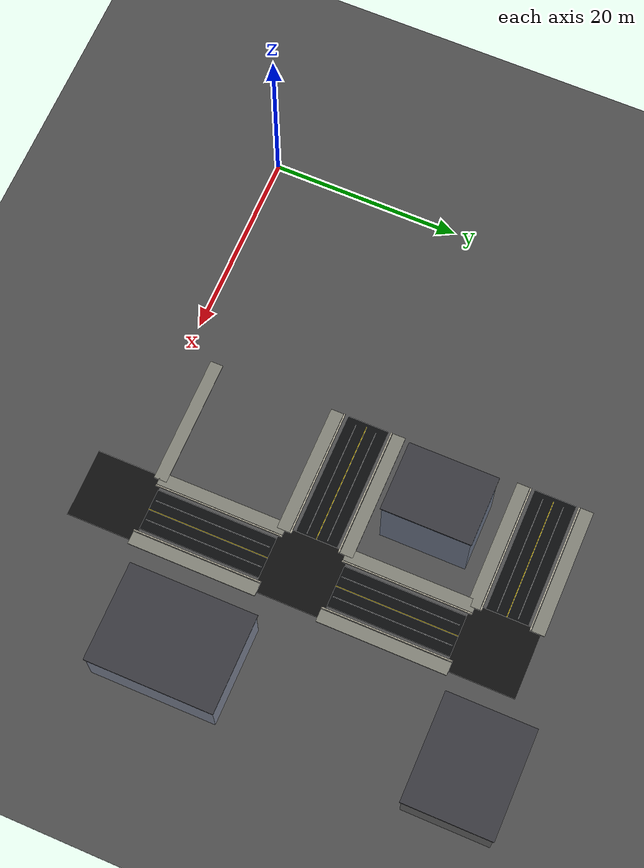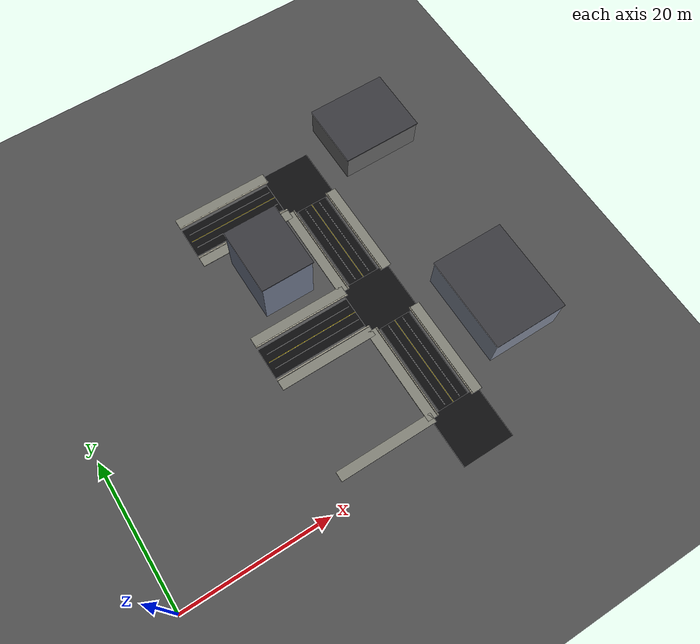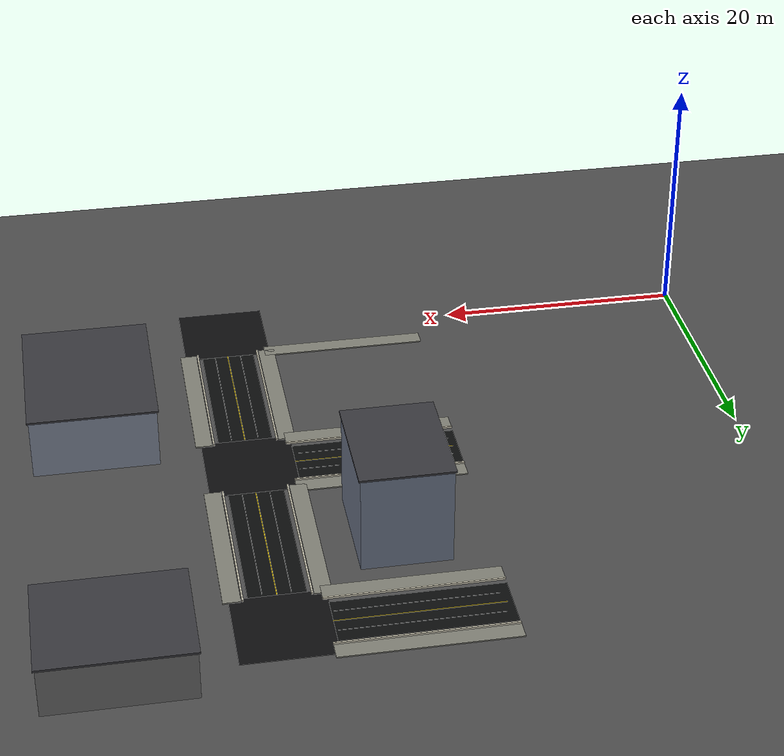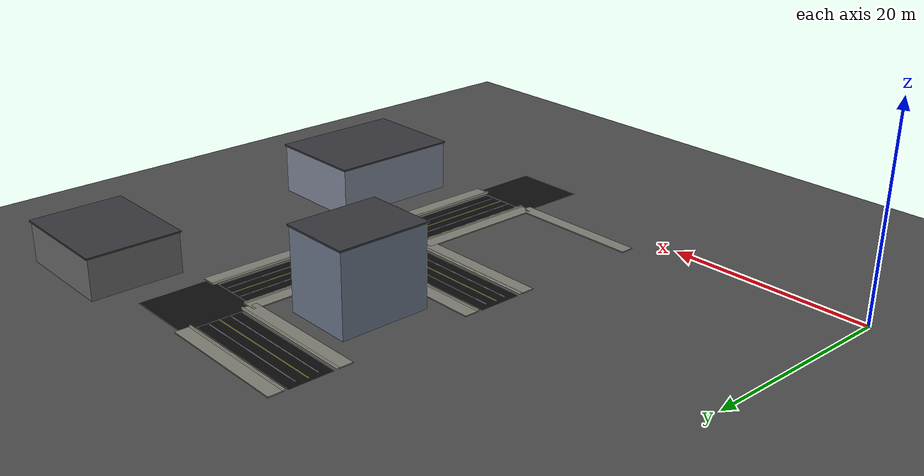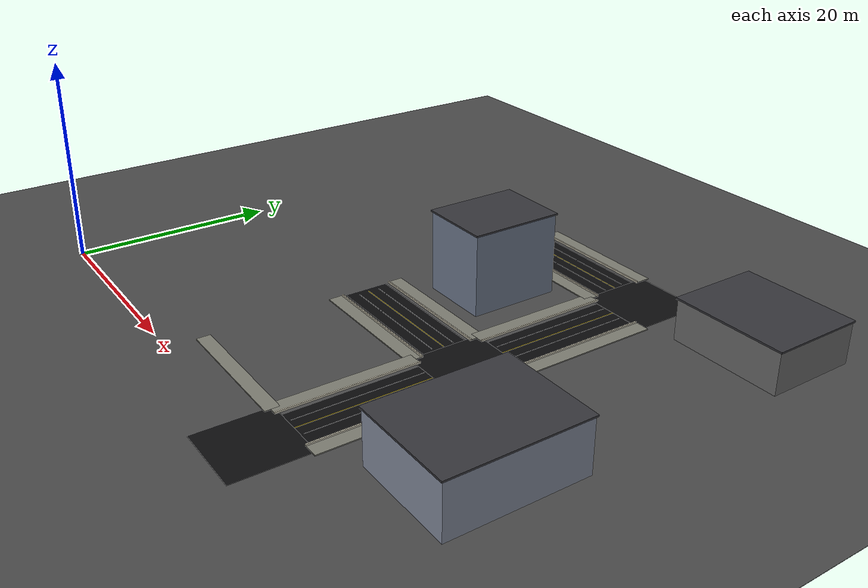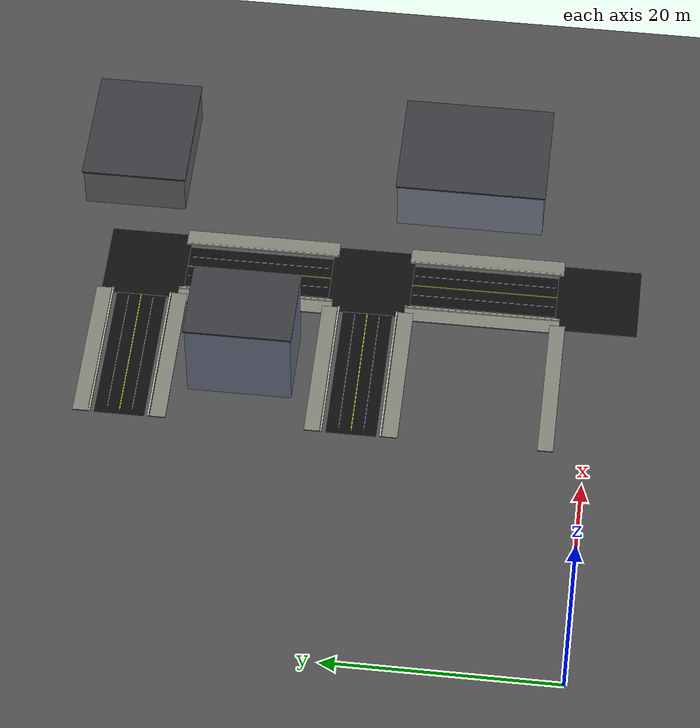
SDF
<sdf version="1.9">
 <world name="smart_city_world">
  <model name="ground">
   <static>true</static>
   <link name="link">
    <collision name="collision"><geometry><box><size>145 145 0.05</size></box></geometry></collision>
    <visual name="visual">
     <geometry><box><size>145 145 0.05</size></box></geometry>
     <material><ambient>0.30 0.30 0.30 1</ambient><diffuse>0.30 0.30 0.30 1</diffuse></material>
    </visual>
   </link>
  </model>
  <model name="road_e4">
   <static>true</static>
   <pose>30.000 40.000 0.018 0 0 0.000000</pose>
   <link name="link">
    <collision name="collision"><geometry><box><size>13.600 4.350 0.030</size></box></geometry></collision>
    <visual name="visual">
     <geometry><box><size>13.600 4.350 0.030</size></box></geometry>
     <material><ambient>0.045 0.047 0.05 1</ambient><diffuse>0.045 0.047 0.05 1</diffuse></material>
    </visual>
   </link>
  </model>
  <model name="center_line_e4">
   <static>true</static>
   <pose>30.000 40.000 0.052 0 0 0.000000</pose>
   <link name="link">
    <visual name="visual">
     <geometry><box><size>12.800 0.070 0.010</size></box></geometry>
     <material><ambient>1 0.86 0.05 1</ambient><diffuse>1 0.86 0.05 1</diffuse></material>
    </visual>
   </link>
  </model>
  <model name="sidewalk_e4_L">
   <static>true</static>
   <pose>30.000 43.350 0.075 0 0 0.000000</pose>
   <link name="link">
    <visual name="visual">
     <geometry><box><size>13.600 1.350 0.100</size></box></geometry>
     <material><ambient>0.5 0.5 0.46 1</ambient><diffuse>0.5 0.5 0.46 1</diffuse></material>
    </visual>
   </link>
  </model>
  <model name="curb_e4_L">
   <static>true</static>
   <pose>30.000 42.550 0.130 0 0 0.000000</pose>
   <link name="link">
    <visual name="visual">
     <geometry><box><size>13.600 0.120 0.180</size></box></geometry>
     <material><ambient>0.8 0.78 0.7 1</ambient><diffuse>0.8 0.78 0.7 1</diffuse></material>
    </visual>
   </link>
  </model>
  <model name="edge_line_e4_L">
   <static>true</static>
   <pose>30.000 41.080 0.054 0 0 0.000000</pose>
   <link name="link">
    <visual name="visual">
     <geometry><box><size>12.400 0.035 0.010</size></box></geometry>
     <material><ambient>0.85 0.85 0.85 1</ambient><diffuse>0.85 0.85 0.85 1</diffuse></material>
    </visual>
   </link>
  </model>
  <model name="sidewalk_e4_R">
   <static>true</static>
   <pose>30.000 36.650 0.075 0 0 0.000000</pose>
   <link name="link">
    <visual name="visual">
     <geometry><box><size>13.600 1.350 0.100</size></box></geometry>
     <material><ambient>0.5 0.5 0.46 1</ambient><diffuse>0.5 0.5 0.46 1</diffuse></material>
    </visual>
   </link>
  </model>
  <model name="curb_e4_R">
   <static>true</static>
   <pose>30.000 37.450 0.130 0 0 0.000000</pose>
   <link name="link">
    <visual name="visual">
     <geometry><box><size>13.600 0.120 0.180</size></box></geometry>
     <material><ambient>0.8 0.78 0.7 1</ambient><diffuse>0.8 0.78 0.7 1</diffuse></material>
    </visual>
   </link>
  </model>
  <model name="edge_line_e4_R">
   <static>true</static>
   <pose>30.000 38.920 0.054 0 0 0.000000</pose>
   <link name="link">
    <visual name="visual">
     <geometry><box><size>12.400 0.035 0.010</size></box></geometry>
     <material><ambient>0.85 0.85 0.85 1</ambient><diffuse>0.85 0.85 0.85 1</diffuse></material>
    </visual>
   </link>
  </model>
  <model name="road_e8">
   <static>true</static>
   <pose>30.000 20.000 0.018 0 0 0.000000</pose>
   <link name="link">
    <collision name="collision"><geometry><box><size>13.600 4.350 0.030</size></box></geometry></collision>
    <visual name="visual">
     <geometry><box><size>13.600 4.350 0.030</size></box></geometry>
     <material><ambient>0.045 0.047 0.05 1</ambient><diffuse>0.045 0.047 0.05 1</diffuse></material>
    </visual>
   </link>
  </model>
  <model name="center_line_e8">
   <static>true</static>
   <pose>30.000 20.000 0.052 0 0 0.000000</pose>
   <link name="link">
    <visual name="visual">
     <geometry><box><size>12.800 0.070 0.010</size></box></geometry>
     <material><ambient>1 0.86 0.05 1</ambient><diffuse>1 0.86 0.05 1</diffuse></material>
    </visual>
   </link>
  </model>
  <model name="sidewalk_e8_L">
   <static>true</static>
   <pose>30.000 23.350 0.075 0 0 0.000000</pose>
   <link name="link">
    <visual name="visual">
     <geometry><box><size>13.600 1.350 0.100</size></box></geometry>
     <material><ambient>0.5 0.5 0.46 1</ambient><diffuse>0.5 0.5 0.46 1</diffuse></material>
    </visual>
   </link>
  </model>
  <model name="curb_e8_L">
   <static>true</static>
   <pose>30.000 22.550 0.130 0 0 0.000000</pose>
   <link name="link">
    <visual name="visual">
     <geometry><box><size>13.600 0.120 0.180</size></box></geometry>
     <material><ambient>0.8 0.78 0.7 1</ambient><diffuse>0.8 0.78 0.7 1</diffuse></material>
    </visual>
   </link>
  </model>
  <model name="edge_line_e8_L">
   <static>true</static>
   <pose>30.000 21.080 0.054 0 0 0.000000</pose>
   <link name="link">
    <visual name="visual">
     <geometry><box><size>12.400 0.035 0.010</size></box></geometry>
     <material><ambient>0.85 0.85 0.85 1</ambient><diffuse>0.85 0.85 0.85 1</diffuse></material>
    </visual>
   </link>
  </model>
  <model name="sidewalk_e8_R">
   <static>true</static>
   <pose>30.000 16.650 0.075 0 0 0.000000</pose>
   <link name="link">
    <visual name="visual">
     <geometry><box><size>13.600 1.350 0.100</size></box></geometry>
     <material><ambient>0.5 0.5 0.46 1</ambient><diffuse>0.5 0.5 0.46 1</diffuse></material>
    </visual>
   </link>
  </model>
  <model name="curb_e8_R">
   <static>true</static>
   <pose>30.000 17.450 0.130 0 0 0.000000</pose>
   <link name="link">
    <visual name="visual">
     <geometry><box><size>13.600 0.120 0.180</size></box></geometry>
     <material><ambient>0.8 0.78 0.7 1</ambient><diffuse>0.8 0.78 0.7 1</diffuse></material>
    </visual>
   </link>
  </model>
  <model name="edge_line_e8_R">
   <static>true</static>
   <pose>30.000 18.920 0.054 0 0 0.000000</pose>
   <link name="link">
    <visual name="visual">
     <geometry><box><size>12.400 0.035 0.010</size></box></geometry>
     <material><ambient>0.85 0.85 0.85 1</ambient><diffuse>0.85 0.85 0.85 1</diffuse></material>
    </visual>
   </link>
  </model>
  <model name="sidewalk_e12_L">
   <static>true</static>
   <pose>30.000 3.350 0.075 0 0 0.000000</pose>
   <link name="link">
    <visual name="visual">
     <geometry><box><size>13.600 1.350 0.100</size></box></geometry>
     <material><ambient>0.5 0.5 0.46 1</ambient><diffuse>0.5 0.5 0.46 1</diffuse></material>
    </visual>
   </link>
  </model>
  <model name="road_e37">
   <static>true</static>
   <pose>40.000 30.000 0.018 0 0 -1.570796</pose>
   <link name="link">
    <collision name="collision"><geometry><box><size>13.600 4.350 0.030</size></box></geometry></collision>
    <visual name="visual">
     <geometry><box><size>13.600 4.350 0.030</size></box></geometry>
     <material><ambient>0.045 0.047 0.05 1</ambient><diffuse>0.045 0.047 0.05 1</diffuse></material>
    </visual>
   </link>
  </model>
  <model name="center_line_e37">
   <static>true</static>
   <pose>40.000 30.000 0.052 0 0 -1.570796</pose>
   <link name="link">
    <visual name="visual">
     <geometry><box><size>12.800 0.070 0.010</size></box></geometry>
     <material><ambient>1 0.86 0.05 1</ambient><diffuse>1 0.86 0.05 1</diffuse></material>
    </visual>
   </link>
  </model>
  <model name="sidewalk_e37_L">
   <static>true</static>
   <pose>43.350 30.000 0.075 0 0 -1.570796</pose>
   <link name="link">
    <visual name="visual">
     <geometry><box><size>13.600 1.350 0.100</size></box></geometry>
     <material><ambient>0.5 0.5 0.46 1</ambient><diffuse>0.5 0.5 0.46 1</diffuse></material>
    </visual>
   </link>
  </model>
  <model name="curb_e37_L">
   <static>true</static>
   <pose>42.550 30.000 0.130 0 0 -1.570796</pose>
   <link name="link">
    <visual name="visual">
     <geometry><box><size>13.600 0.120 0.180</size></box></geometry>
     <material><ambient>0.8 0.78 0.7 1</ambient><diffuse>0.8 0.78 0.7 1</diffuse></material>
    </visual>
   </link>
  </model>
  <model name="edge_line_e37_L">
   <static>true</static>
   <pose>41.080 30.000 0.054 0 0 -1.570796</pose>
   <link name="link">
    <visual name="visual">
     <geometry><box><size>12.400 0.035 0.010</size></box></geometry>
     <material><ambient>0.85 0.85 0.85 1</ambient><diffuse>0.85 0.85 0.85 1</diffuse></material>
    </visual>
   </link>
  </model>
  <model name="sidewalk_e37_R">
   <static>true</static>
   <pose>36.650 30.000 0.075 0 0 -1.570796</pose>
   <link name="link">
    <visual name="visual">
     <geometry><box><size>13.600 1.350 0.100</size></box></geometry>
     <material><ambient>0.5 0.5 0.46 1</ambient><diffuse>0.5 0.5 0.46 1</diffuse></material>
    </visual>
   </link>
  </model>
  <model name="curb_e37_R">
   <static>true</static>
   <pose>37.450 30.000 0.130 0 0 -1.570796</pose>
   <link name="link">
    <visual name="visual">
     <geometry><box><size>13.600 0.120 0.180</size></box></geometry>
     <material><ambient>0.8 0.78 0.7 1</ambient><diffuse>0.8 0.78 0.7 1</diffuse></material>
    </visual>
   </link>
  </model>
  <model name="edge_line_e37_R">
   <static>true</static>
   <pose>38.920 30.000 0.054 0 0 -1.570796</pose>
   <link name="link">
    <visual name="visual">
     <geometry><box><size>12.400 0.035 0.010</size></box></geometry>
     <material><ambient>0.85 0.85 0.85 1</ambient><diffuse>0.85 0.85 0.85 1</diffuse></material>
    </visual>
   </link>
  </model>
  <model name="road_e38">
   <static>true</static>
   <pose>40.000 10.000 0.018 0 0 -1.570796</pose>
   <link name="link">
    <collision name="collision"><geometry><box><size>13.600 4.350 0.030</size></box></geometry></collision>
    <visual name="visual">
     <geometry><box><size>13.600 4.350 0.030</size></box></geometry>
     <material><ambient>0.045 0.047 0.05 1</ambient><diffuse>0.045 0.047 0.05 1</diffuse></material>
    </visual>
   </link>
  </model>
  <model name="center_line_e38">
   <static>true</static>
   <pose>40.000 10.000 0.052 0 0 -1.570796</pose>
   <link name="link">
    <visual name="visual">
     <geometry><box><size>12.800 0.070 0.010</size></box></geometry>
     <material><ambient>1 0.86 0.05 1</ambient><diffuse>1 0.86 0.05 1</diffuse></material>
    </visual>
   </link>
  </model>
  <model name="sidewalk_e38_L">
   <static>true</static>
   <pose>43.350 10.000 0.075 0 0 -1.570796</pose>
   <link name="link">
    <visual name="visual">
     <geometry><box><size>13.600 1.350 0.100</size></box></geometry>
     <material><ambient>0.5 0.5 0.46 1</ambient><diffuse>0.5 0.5 0.46 1</diffuse></material>
    </visual>
   </link>
  </model>
  <model name="curb_e38_L">
   <static>true</static>
   <pose>42.550 10.000 0.130 0 0 -1.570796</pose>
   <link name="link">
    <visual name="visual">
     <geometry><box><size>13.600 0.120 0.180</size></box></geometry>
     <material><ambient>0.8 0.78 0.7 1</ambient><diffuse>0.8 0.78 0.7 1</diffuse></material>
    </visual>
   </link>
  </model>
  <model name="edge_line_e38_L">
   <static>true</static>
   <pose>41.080 10.000 0.054 0 0 -1.570796</pose>
   <link name="link">
    <visual name="visual">
     <geometry><box><size>12.400 0.035 0.010</size></box></geometry>
     <material><ambient>0.85 0.85 0.85 1</ambient><diffuse>0.85 0.85 0.85 1</diffuse></material>
    </visual>
   </link>
  </model>
  <model name="sidewalk_e38_R">
   <static>true</static>
   <pose>36.650 10.000 0.075 0 0 -1.570796</pose>
   <link name="link">
    <visual name="visual">
     <geometry><box><size>13.600 1.350 0.100</size></box></geometry>
     <material><ambient>0.5 0.5 0.46 1</ambient><diffuse>0.5 0.5 0.46 1</diffuse></material>
    </visual>
   </link>
  </model>
  <model name="curb_e38_R">
   <static>true</static>
   <pose>37.450 10.000 0.130 0 0 -1.570796</pose>
   <link name="link">
    <visual name="visual">
     <geometry><box><size>13.600 0.120 0.180</size></box></geometry>
     <material><ambient>0.8 0.78 0.7 1</ambient><diffuse>0.8 0.78 0.7 1</diffuse></material>
    </visual>
   </link>
  </model>
  <model name="edge_line_e38_R">
   <static>true</static>
   <pose>38.920 10.000 0.054 0 0 -1.570796</pose>
   <link name="link">
    <visual name="visual">
     <geometry><box><size>12.400 0.035 0.010</size></box></geometry>
     <material><ambient>0.85 0.85 0.85 1</ambient><diffuse>0.85 0.85 0.85 1</diffuse></material>
    </visual>
   </link>
  </model>
  <model name="intersection_plate_n5">
   <static>true</static>
   <pose>40.000 40.000 0.025 0 0 0.000000</pose>
   <link name="link">
    <collision name="collision"><geometry><box><size>7.200 7.200 0.035</size></box></geometry></collision>
    <visual name="visual">
     <geometry><box><size>7.200 7.200 0.035</size></box></geometry>
     <material><ambient>0.055 0.055 0.058 1</ambient><diffuse>0.055 0.055 0.058 1</diffuse></material>
    </visual>
   </link>
  </model>
  <model name="intersection_plate_n10">
   <static>true</static>
   <pose>40.000 20.000 0.025 0 0 0.000000</pose>
   <link name="link">
    <collision name="collision"><geometry><box><size>7.200 7.200 0.035</size></box></geometry></collision>
    <visual name="visual">
     <geometry><box><size>7.200 7.200 0.035</size></box></geometry>
     <material><ambient>0.055 0.055 0.058 1</ambient><diffuse>0.055 0.055 0.058 1</diffuse></material>
    </visual>
   </link>
  </model>
  <model name="intersection_plate_n15">
   <static>true</static>
   <pose>40.000 0.000 0.025 0 0 0.000000</pose>
   <link name="link">
    <collision name="collision"><geometry><box><size>7.200 7.200 0.035</size></box></geometry></collision>
    <visual name="visual">
     <geometry><box><size>7.200 7.200 0.035</size></box></geometry>
     <material><ambient>0.055 0.055 0.058 1</ambient><diffuse>0.055 0.055 0.058 1</diffuse></material>
    </visual>
   </link>
  </model>
  <model name="mall">
   <static>true</static>
   <pose>52.000 12.000 2.500 0 0 0.000000</pose>
   <link name="link">
    <collision name="collision"><geometry><box><size>10.000 13.000 5.000</size></box></geometry></collision>
    <visual name="visual">
     <geometry><box><size>10.000 13.000 5.000</size></box></geometry>
     <material><ambient>0.52 0.55 0.62 1</ambient><diffuse>0.52 0.55 0.62 1</diffuse></material>
    </visual>
   </link>
  </model>
  <model name="mall_roof">
   <static>true</static>
   <pose>52.000 12.000 5.080 0 0 0.000000</pose>
   <link name="link">
    <visual name="visual">
     <geometry><box><size>10.250 13.250 0.160</size></box></geometry>
     <material><ambient>0.22 0.22 0.24 1</ambient><diffuse>0.22 0.22 0.24 1</diffuse></material>
    </visual>
   </link>
  </model>
  <model name="office_b">
   <static>true</static>
   <pose>30.000 30.000 4.000 0 0 0.000000</pose>
   <link name="link">
    <collision name="collision"><geometry><box><size>7.000 9.000 8.000</size></box></geometry></collision>
    <visual name="visual">
     <geometry><box><size>7.000 9.000 8.000</size></box></geometry>
     <material><ambient>0.44 0.48 0.56 1</ambient><diffuse>0.44 0.48 0.56 1</diffuse></material>
    </visual>
   </link>
  </model>
  <model name="office_b_roof">
   <static>true</static>
   <pose>30.000 30.000 8.080 0 0 0.000000</pose>
   <link name="link">
    <visual name="visual">
     <geometry><box><size>7.250 9.250 0.160</size></box></geometry>
     <material><ambient>0.22 0.22 0.24 1</ambient><diffuse>0.22 0.22 0.24 1</diffuse></material>
    </visual>
   </link>
  </model>
  <model name="warehouse">
   <static>true</static>
   <pose>52.000 42.000 2.000 0 0 0.000000</pose>
   <link name="link">
    <collision name="collision"><geometry><box><size>11.000 9.000 4.000</size></box></geometry></collision>
    <visual name="visual">
     <geometry><box><size>11.000 9.000 4.000</size></box></geometry>
     <material><ambient>0.42 0.42 0.42 1</ambient><diffuse>0.42 0.42 0.42 1</diffuse></material>
    </visual>
   </link>
  </model>
  <model name="warehouse_roof">
   <static>true</static>
   <pose>52.000 42.000 4.080 0 0 0.000000</pose>
   <link name="link">
    <visual name="visual">
     <geometry><box><size>11.250 9.250 0.160</size></box></geometry>
     <material><ambient>0.22 0.22 0.24 1</ambient><diffuse>0.22 0.22 0.24 1</diffuse></material>
    </visual>
   </link>
  </model>
 </world>
</sdf>
